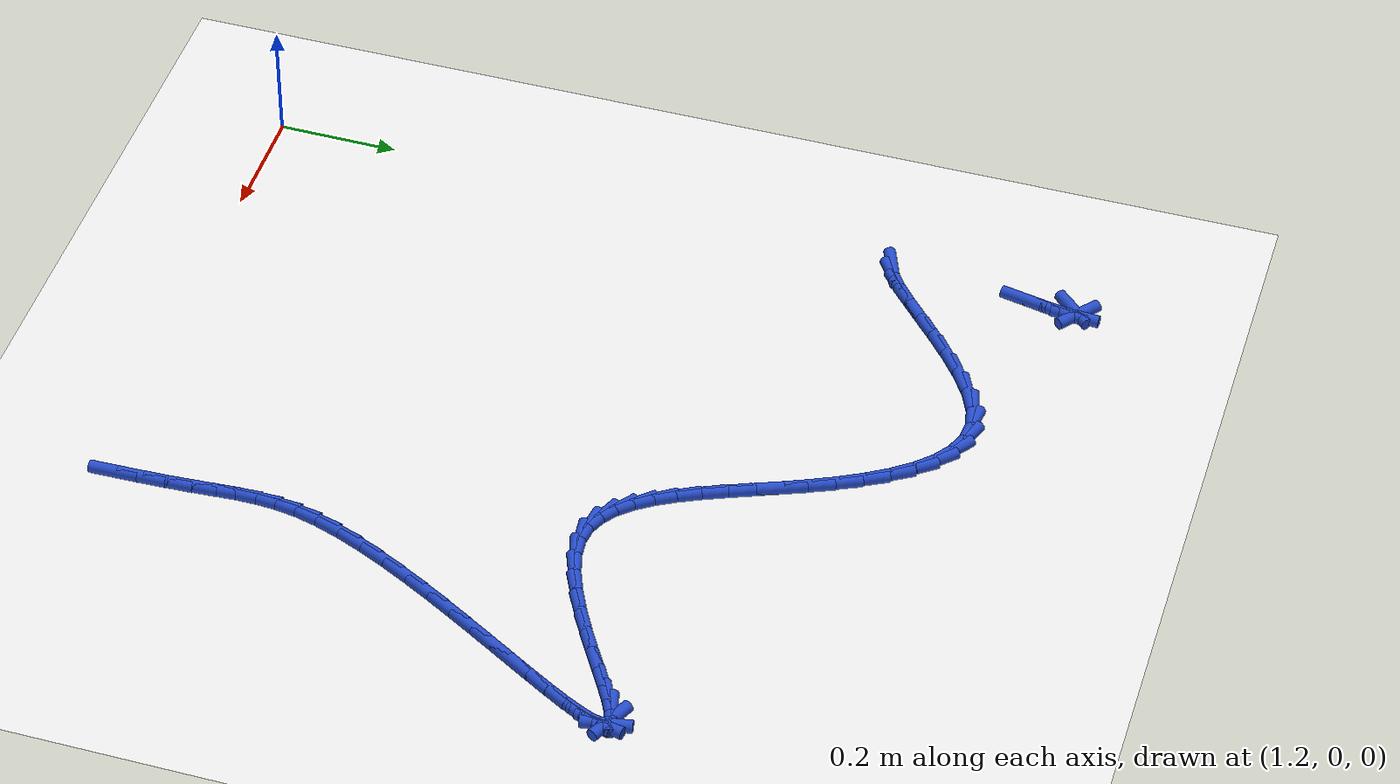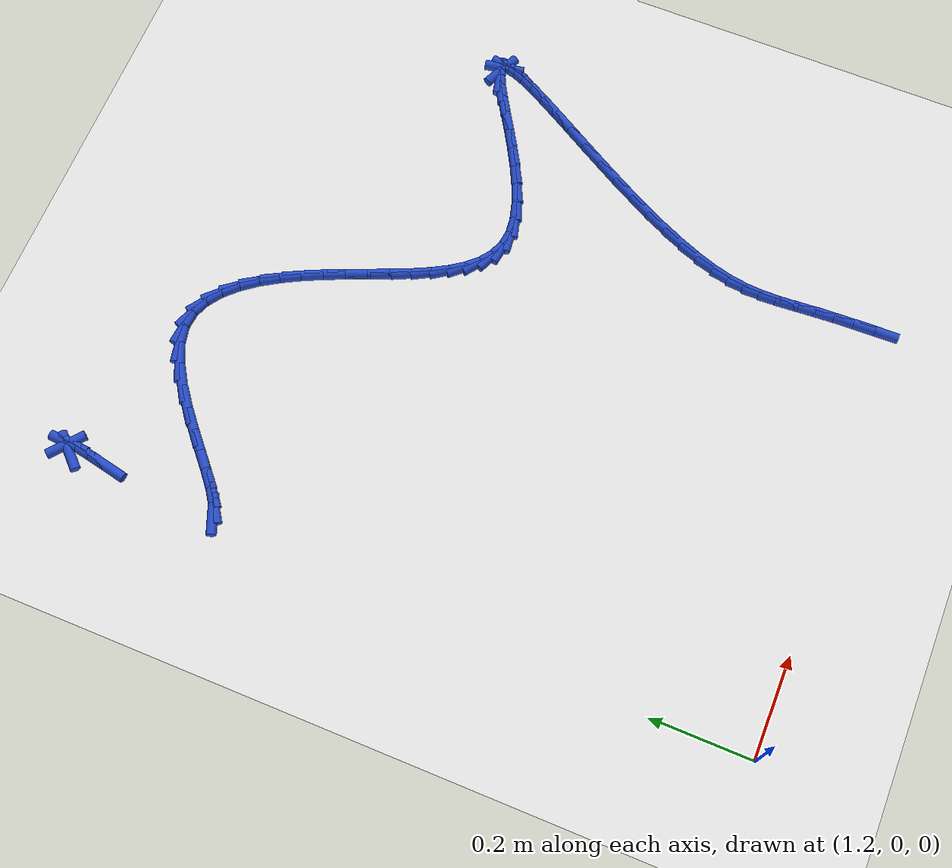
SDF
<sdf version="1.6">
 <world name="default">
  <model name="ground_plane">
   <static>1</static>
   <link name="link">
    <collision name="collision">
     <geometry><plane><normal>0 0 1</normal><size>100 100</size></plane></geometry>
     <surface><friction><ode><mu>100</mu><mu2>50</mu2></ode></friction></surface>
    </collision>
    <visual name="visual">
     <cast_shadows>0</cast_shadows>
     <geometry><plane><normal>0 0 1</normal><size>100 100</size></plane></geometry>
     <material>
      <script><uri>file://media/materials/scripts/gazebo.material</uri><name>Gazebo/WhiteGlow</name></script>
     </material>
    </visual>
   </link>
  </model>
  <model name="line">
   <link name="link_68">
    <pose>1.256264112272041 1.3805755294032667 0.01 0 1.57 0.7977311711641077</pose>
    <collision name="collision">
     <geometry><cylinder><radius>0.01</radius><length>0.08</length></cylinder></geometry>
    </collision>
    <visual name="visual">
     <material>
      <script><name>Gazebo/Blue</name><uri>file://media/materials/scripts/gazebo.material</uri></script>
     </material>
     <geometry><cylinder><radius>0.01</radius><length>0.08</length></cylinder></geometry>
    </visual>
   </link>
   <link name="link_69">
    <pose>1.2657052646737854 1.3902524774414222 0.01 0 1.57 -0.6985106043687016</pose>
    <collision name="collision">
     <geometry><cylinder><radius>0.01</radius><length>0.08</length></cylinder></geometry>
    </collision>
    <visual name="visual">
     <material>
      <script><name>Gazebo/Blue</name><uri>file://media/materials/scripts/gazebo.material</uri></script>
     </material>
     <geometry><cylinder><radius>0.01</radius><length>0.08</length></cylinder></geometry>
    </visual>
   </link>
   <link name="link_70">
    <pose>1.2698895539854897 1.38673873923058 0.01 0 1.57 1.5092083684171693</pose>
    <collision name="collision">
     <geometry><cylinder><radius>0.01</radius><length>0.08</length></cylinder></geometry>
    </collision>
    <visual name="visual">
     <material>
      <script><name>Gazebo/Blue</name><uri>file://media/materials/scripts/gazebo.material</uri></script>
     </material>
     <geometry><cylinder><radius>0.01</radius><length>0.08</length></cylinder></geometry>
    </visual>
   </link>
   <link name="link_71">
    <pose>1.2687721077704281 1.368617778022861 0.01 0 1.57 1.398758770093922</pose>
    <collision name="collision">
     <geometry><cylinder><radius>0.01</radius><length>0.08</length></cylinder></geometry>
    </collision>
    <visual name="visual">
     <material>
      <script><name>Gazebo/Blue</name><uri>file://media/materials/scripts/gazebo.material</uri></script>
     </material>
     <geometry><cylinder><radius>0.01</radius><length>0.08</length></cylinder></geometry>
    </visual>
   </link>
   <link name="link_72">
    <pose>1.263530957244736 1.3384537777559522 0.01 0 1.57 1.3693697978223787</pose>
    <collision name="collision">
     <geometry><cylinder><radius>0.01</radius><length>0.08</length></cylinder></geometry>
    </collision>
    <visual name="visual">
     <material>
      <script><name>Gazebo/Blue</name><uri>file://media/materials/scripts/gazebo.material</uri></script>
     </material>
     <geometry><cylinder><radius>0.01</radius><length>0.08</length></cylinder></geometry>
    </visual>
   </link>
   <link name="link_73">
    <pose>1.2556182831749525 1.2997033171066312 0.01 0 1.57 1.3656132691662246</pose>
    <collision name="collision">
     <geometry><cylinder><radius>0.01</radius><length>0.08</length></cylinder></geometry>
    </collision>
    <visual name="visual">
     <material>
      <script><name>Gazebo/Blue</name><uri>file://media/materials/scripts/gazebo.material</uri></script>
     </material>
     <geometry><cylinder><radius>0.01</radius><length>0.08</length></cylinder></geometry>
    </visual>
   </link>
   <link name="link_80">
    <pose>1.246573677518374 1.0762804029459523 0.01 0 1.57 0.36931523468999916</pose>
    <collision name="collision">
     <geometry><cylinder><radius>0.01</radius><length>0.08</length></cylinder></geometry>
    </collision>
    <visual name="visual">
     <material>
      <script><name>Gazebo/Blue</name><uri>file://media/materials/scripts/gazebo.material</uri></script>
     </material>
     <geometry><cylinder><radius>0.01</radius><length>0.08</length></cylinder></geometry>
    </visual>
   </link>
   <link name="link_81">
    <pose>1.2657587817118034 1.0837064884859733 0.01 0 1.57 0.6015300312243337</pose>
    <collision name="collision">
     <geometry><cylinder><radius>0.01</radius><length>0.08</length></cylinder></geometry>
    </collision>
    <visual name="visual">
     <material>
      <script><name>Gazebo/Blue</name><uri>file://media/materials/scripts/gazebo.material</uri></script>
     </material>
     <geometry><cylinder><radius>0.01</radius><length>0.08</length></cylinder></geometry>
    </visual>
   </link>
   <link name="link_82">
    <pose>1.2900609147155186 1.1003871157178564 0.01 0 1.57 0.6907101843505407</pose>
    <collision name="collision">
     <geometry><cylinder><radius>0.01</radius><length>0.08</length></cylinder></geometry>
    </collision>
    <visual name="visual">
     <material>
      <script><name>Gazebo/Blue</name><uri>file://media/materials/scripts/gazebo.material</uri></script>
     </material>
     <geometry><cylinder><radius>0.01</radius><length>0.08</length></cylinder></geometry>
    </visual>
   </link>
   <link name="link_83">
    <pose>1.3186333728317066 1.1240031310455665 0.01 0 1.57 0.7229866450906738</pose>
    <collision name="collision">
     <geometry><cylinder><radius>0.01</radius><length>0.08</length></cylinder></geometry>
    </collision>
    <visual name="visual">
     <material>
      <script><name>Gazebo/Blue</name><uri>file://media/materials/scripts/gazebo.material</uri></script>
     </material>
     <geometry><cylinder><radius>0.01</radius><length>0.08</length></cylinder></geometry>
    </visual>
   </link>
   <link name="link_84">
    <pose>1.3506294523625566 1.1522353808730694 0.01 0 1.57 0.723365382916249</pose>
    <collision name="collision">
     <geometry><cylinder><radius>0.01</radius><length>0.08</length></cylinder></geometry>
    </collision>
    <visual name="visual">
     <material>
      <script><name>Gazebo/Blue</name><uri>file://media/materials/scripts/gazebo.material</uri></script>
     </material>
     <geometry><cylinder><radius>0.01</radius><length>0.08</length></cylinder></geometry>
    </visual>
   </link>
   <link name="link_85">
    <pose>1.3852024496102557 1.18276471160433 0.01 0 1.57 0.6988626458921552</pose>
    <collision name="collision">
     <geometry><cylinder><radius>0.01</radius><length>0.08</length></cylinder></geometry>
    </collision>
    <visual name="visual">
     <material>
      <script><name>Gazebo/Blue</name><uri>file://media/materials/scripts/gazebo.material</uri></script>
     </material>
     <geometry><cylinder><radius>0.01</radius><length>0.08</length></cylinder></geometry>
    </visual>
   </link>
   <link name="link_86">
    <pose>1.4215056608769936 1.2132719696433147 0.01 0 1.57 0.6482341323624207</pose>
    <collision name="collision">
     <geometry><cylinder><radius>0.01</radius><length>0.08</length></cylinder></geometry>
    </collision>
    <visual name="visual">
     <material>
      <script><name>Gazebo/Blue</name><uri>file://media/materials/scripts/gazebo.material</uri></script>
     </material>
     <geometry><cylinder><radius>0.01</radius><length>0.08</length></cylinder></geometry>
    </visual>
   </link>
   <link name="link_87">
    <pose>1.4586923824649578 1.241438001393988 0.01 0 1.57 0.5632404988815849</pose>
    <collision name="collision">
     <geometry><cylinder><radius>0.01</radius><length>0.08</length></cylinder></geometry>
    </collision>
    <visual name="visual">
     <material>
      <script><name>Gazebo/Blue</name><uri>file://media/materials/scripts/gazebo.material</uri></script>
     </material>
     <geometry><cylinder><radius>0.01</radius><length>0.08</length></cylinder></geometry>
    </visual>
   </link>
   <link name="link_88">
    <pose>1.4959159106763367 1.2649436532603164 0.01 0 1.57 0.4260462333537006</pose>
    <collision name="collision">
     <geometry><cylinder><radius>0.01</radius><length>0.08</length></cylinder></geometry>
    </collision>
    <visual name="visual">
     <material>
      <script><name>Gazebo/Blue</name><uri>file://media/materials/scripts/gazebo.material</uri></script>
     </material>
     <geometry><cylinder><radius>0.01</radius><length>0.08</length></cylinder></geometry>
    </visual>
   </link>
   <link name="link_89">
    <pose>1.5323295418133176 1.2814697716462642 0.01 0 1.57 0.20534554346475045</pose>
    <collision name="collision">
     <geometry><cylinder><radius>0.01</radius><length>0.08</length></cylinder></geometry>
    </collision>
    <visual name="visual">
     <material>
      <script><name>Gazebo/Blue</name><uri>file://media/materials/scripts/gazebo.material</uri></script>
     </material>
     <geometry><cylinder><radius>0.01</radius><length>0.08</length></cylinder></geometry>
    </visual>
   </link>
   <link name="link_90">
    <pose>1.567089635826595 1.288709650074235 0.01 0 1.57 -0.09607439442499995</pose>
    <collision name="collision">
     <geometry><cylinder><radius>0.01</radius><length>0.08</length></cylinder></geometry>
    </collision>
    <visual name="visual">
     <material>
      <script><name>Gazebo/Blue</name><uri>file://media/materials/scripts/gazebo.material</uri></script>
     </material>
     <geometry><cylinder><radius>0.01</radius><length>0.08</length></cylinder></geometry>
    </visual>
   </link>
   <link name="link_91">
    <pose>1.5996516130219725 1.28557161690283 0.01 0 1.57 -0.3874172694732243</pose>
    <collision name="collision">
     <geometry><cylinder><radius>0.01</radius><length>0.08</length></cylinder></geometry>
    </collision>
    <visual name="visual">
     <material>
      <script><name>Gazebo/Blue</name><uri>file://media/materials/scripts/gazebo.material</uri></script>
     </material>
     <geometry><cylinder><radius>0.01</radius><length>0.08</length></cylinder></geometry>
    </visual>
   </link>
   <link name="link_92">
    <pose>1.630016689404305 1.273181481933656 0.01 0 1.57 -0.6230113221757752</pose>
    <collision name="collision">
     <geometry><cylinder><radius>0.01</radius><length>0.08</length></cylinder></geometry>
    </collision>
    <visual name="visual">
     <material>
      <script><name>Gazebo/Blue</name><uri>file://media/materials/scripts/gazebo.material</uri></script>
     </material>
     <geometry><cylinder><radius>0.01</radius><length>0.08</length></cylinder></geometry>
    </visual>
   </link>
   <link name="link_93">
    <pose>1.6582441629500086 1.2529010328155763 0.01 0 1.57 -0.7978565454737813</pose>
    <collision name="collision">
     <geometry><cylinder><radius>0.01</radius><length>0.08</length></cylinder></geometry>
    </collision>
    <visual name="visual">
     <material>
      <script><name>Gazebo/Blue</name><uri>file://media/materials/scripts/gazebo.material</uri></script>
     </material>
     <geometry><cylinder><radius>0.01</radius><length>0.08</length></cylinder></geometry>
    </visual>
   </link>
   <link name="link_94">
    <pose>1.6843933316354958 1.2260920571974543 0.01 0 1.57 -0.9243320538142196</pose>
    <collision name="collision">
     <geometry><cylinder><radius>0.01</radius><length>0.08</length></cylinder></geometry>
    </collision>
    <visual name="visual">
     <material>
      <script><name>Gazebo/Blue</name><uri>file://media/materials/scripts/gazebo.material</uri></script>
     </material>
     <geometry><cylinder><radius>0.01</radius><length>0.08</length></cylinder></geometry>
    </visual>
   </link>
   <link name="link_95">
    <pose>1.708523493437182 1.1941163427281538 0.01 0 1.57 -1.0160743895242792</pose>
    <collision name="collision">
     <geometry><cylinder><radius>0.01</radius><length>0.08</length></cylinder></geometry>
    </collision>
    <visual name="visual">
     <material>
      <script><name>Gazebo/Blue</name><uri>file://media/materials/scripts/gazebo.material</uri></script>
     </material>
     <geometry><cylinder><radius>0.01</radius><length>0.08</length></cylinder></geometry>
    </visual>
   </link>
   <link name="link_96">
    <pose>1.7306939463314799 1.1583356770565378 0.01 0 1.57 -1.0831982492757537</pose>
    <collision name="collision">
     <geometry><cylinder><radius>0.01</radius><length>0.08</length></cylinder></geometry>
    </collision>
    <visual name="visual">
     <material>
      <script><name>Gazebo/Blue</name><uri>file://media/materials/scripts/gazebo.material</uri></script>
     </material>
     <geometry><cylinder><radius>0.01</radius><length>0.08</length></cylinder></geometry>
    </visual>
   </link>
   <link name="link_97">
    <pose>1.7509659513090186 1.120108740271139 0.01 0 1.57 -1.1315955366389887</pose>
    <collision name="collision">
     <geometry><cylinder><radius>0.01</radius><length>0.08</length></cylinder></geometry>
    </collision>
    <visual name="visual">
     <material>
      <script><name>Gazebo/Blue</name><uri>file://media/materials/scripts/gazebo.material</uri></script>
     </material>
     <geometry><cylinder><radius>0.01</radius><length>0.08</length></cylinder></geometry>
    </visual>
   </link>
   <link name="link_98">
    <pose>1.7695386146684435 1.0805759956955598 0.01 0 1.57 -1.1631310975254268</pose>
    <collision name="collision">
     <geometry><cylinder><radius>0.01</radius><length>0.08</length></cylinder></geometry>
    </collision>
    <visual name="visual">
     <material>
      <script><name>Gazebo/Blue</name><uri>file://media/materials/scripts/gazebo.material</uri></script>
     </material>
     <geometry><cylinder><radius>0.01</radius><length>0.08</length></cylinder></geometry>
    </visual>
   </link>
   <link name="link_99">
    <pose>1.7868371159117076 1.0405200202387666 0.01 0 1.57 -1.1786880895584793</pose>
    <collision name="collision">
     <geometry><cylinder><radius>0.01</radius><length>0.08</length></cylinder></geometry>
    </collision>
    <visual name="visual">
     <material>
      <script><name>Gazebo/Blue</name><uri>file://media/materials/scripts/gazebo.material</uri></script>
     </material>
     <geometry><cylinder><radius>0.01</radius><length>0.08</length></cylinder></geometry>
    </visual>
   </link>
   <link name="link_100">
    <pose>1.8033076085232442 1.0006901878326295 0.01 0 1.57 -1.178214712655763</pose>
    <collision name="collision">
     <geometry><cylinder><radius>0.01</radius><length>0.08</length></cylinder></geometry>
    </collision>
    <visual name="visual">
     <material>
      <script><name>Gazebo/Blue</name><uri>file://media/materials/scripts/gazebo.material</uri></script>
     </material>
     <geometry><cylinder><radius>0.01</radius><length>0.08</length></cylinder></geometry>
    </visual>
   </link>
   <link name="link_101">
    <pose>1.8193962459874853 0.9618358724090186 0.01 0 1.57 -1.1604491172332083</pose>
    <collision name="collision">
     <geometry><cylinder><radius>0.01</radius><length>0.08</length></cylinder></geometry>
    </collision>
    <visual name="visual">
     <material>
      <script><name>Gazebo/Blue</name><uri>file://media/materials/scripts/gazebo.material</uri></script>
     </material>
     <geometry><cylinder><radius>0.01</radius><length>0.08</length></cylinder></geometry>
    </visual>
   </link>
   <link name="link_102">
    <pose>1.8355491817888654 0.9247064478998029 0.01 0 1.57 -1.122598542730923</pose>
    <collision name="collision">
     <geometry><cylinder><radius>0.01</radius><length>0.08</length></cylinder></geometry>
    </collision>
    <visual name="visual">
     <material>
      <script><name>Gazebo/Blue</name><uri>file://media/materials/scripts/gazebo.material</uri></script>
     </material>
     <geometry><cylinder><radius>0.01</radius><length>0.08</length></cylinder></geometry>
    </visual>
   </link>
   <link name="link_103">
    <pose>1.8522125694118179 0.8900512882368539 0.01 0 1.57 -1.0598638934474927</pose>
    <collision name="collision">
     <geometry><cylinder><radius>0.01</radius><length>0.08</length></cylinder></geometry>
    </collision>
    <visual name="visual">
     <material>
      <script><name>Gazebo/Blue</name><uri>file://media/materials/scripts/gazebo.material</uri></script>
     </material>
     <geometry><cylinder><radius>0.01</radius><length>0.08</length></cylinder></geometry>
    </visual>
   </link>
   <link name="link_104">
    <pose>1.8698325623407757 0.8586197673520409 0.01 0 1.57 -0.9649313113036356</pose>
    <collision name="collision">
     <geometry><cylinder><radius>0.01</radius><length>0.08</length></cylinder></geometry>
    </collision>
    <visual name="visual">
     <material>
      <script><name>Gazebo/Blue</name><uri>file://media/materials/scripts/gazebo.material</uri></script>
     </material>
     <geometry><cylinder><radius>0.01</radius><length>0.08</length></cylinder></geometry>
    </visual>
   </link>
   <link name="link_105">
    <pose>1.8888553140601725 0.8311612591772345 0.01 0 1.57 -0.8281272926689245</pose>
    <collision name="collision">
     <geometry><cylinder><radius>0.01</radius><length>0.08</length></cylinder></geometry>
    </collision>
    <visual name="visual">
     <material>
      <script><name>Gazebo/Blue</name><uri>file://media/materials/scripts/gazebo.material</uri></script>
     </material>
     <geometry><cylinder><radius>0.01</radius><length>0.08</length></cylinder></geometry>
    </visual>
   </link>
   <link name="link_106">
    <pose>1.9097269780544415 0.8084251376443047 0.01 0 1.57 -0.6404362878605853</pose>
    <collision name="collision">
     <geometry><cylinder><radius>0.01</radius><length>0.08</length></cylinder></geometry>
    </collision>
    <visual name="visual">
     <material>
      <script><name>Gazebo/Blue</name><uri>file://media/materials/scripts/gazebo.material</uri></script>
     </material>
     <geometry><cylinder><radius>0.01</radius><length>0.08</length></cylinder></geometry>
    </visual>
   </link>
   <link name="link_107">
    <pose>1.9328937078080162 0.7911607766851215 0.01 0 1.57 -0.40292772986061187</pose>
    <collision name="collision">
     <geometry><cylinder><radius>0.01</radius><length>0.08</length></cylinder></geometry>
    </collision>
    <visual name="visual">
     <material>
      <script><name>Gazebo/Blue</name><uri>file://media/materials/scripts/gazebo.material</uri></script>
     </material>
     <geometry><cylinder><radius>0.01</radius><length>0.08</length></cylinder></geometry>
    </visual>
   </link>
   <link name="link_108">
    <pose>1.958801656805329 0.7801175502315554 0.01 0 1.57 -0.13907480496183336</pose>
    <collision name="collision">
     <geometry><cylinder><radius>0.01</radius><length>0.08</length></cylinder></geometry>
    </collision>
    <visual name="visual">
     <material>
      <script><name>Gazebo/Blue</name><uri>file://media/materials/scripts/gazebo.material</uri></script>
     </material>
     <geometry><cylinder><radius>0.01</radius><length>0.08</length></cylinder></geometry>
    </visual>
   </link>
   <link name="link_109">
    <pose>1.9878969785308152 0.776044832215476 0.01 0 1.57 0.1023306690665531</pose>
    <collision name="collision">
     <geometry><cylinder><radius>0.01</radius><length>0.08</length></cylinder></geometry>
    </collision>
    <visual name="visual">
     <material>
      <script><name>Gazebo/Blue</name><uri>file://media/materials/scripts/gazebo.material</uri></script>
     </material>
     <geometry><cylinder><radius>0.01</radius><length>0.08</length></cylinder></geometry>
    </visual>
   </link>
   <link name="link_110">
    <pose>2.0204201757538427 0.7793846184911194 0.01 0 1.57 0.2700291150694442</pose>
    <collision name="collision">
     <geometry><cylinder><radius>0.01</radius><length>0.08</length></cylinder></geometry>
    </collision>
    <visual name="visual">
     <material>
      <script><name>Gazebo/Blue</name><uri>file://media/materials/scripts/gazebo.material</uri></script>
     </material>
     <geometry><cylinder><radius>0.01</radius><length>0.08</length></cylinder></geometry>
    </visual>
   </link>
   <link name="link_111">
    <pose>2.055645443124595 0.7891346019741866 0.01 0 1.57 0.37973209714804096</pose>
    <collision name="collision">
     <geometry><cylinder><radius>0.01</radius><length>0.08</length></cylinder></geometry>
    </collision>
    <visual name="visual">
     <material>
      <script><name>Gazebo/Blue</name><uri>file://media/materials/scripts/gazebo.material</uri></script>
     </material>
     <geometry><cylinder><radius>0.01</radius><length>0.08</length></cylinder></geometry>
    </visual>
   </link>
   <link name="link_112">
    <pose>2.092563409028925 0.8038686401797407 0.01 0 1.57 0.45276539629791684</pose>
    <collision name="collision">
     <geometry><cylinder><radius>0.01</radius><length>0.08</length></cylinder></geometry>
    </collision>
    <visual name="visual">
     <material>
      <script><name>Gazebo/Blue</name><uri>file://media/materials/scripts/gazebo.material</uri></script>
     </material>
     <geometry><cylinder><radius>0.01</radius><length>0.08</length></cylinder></geometry>
    </visual>
   </link>
   <link name="link_113">
    <pose>2.130164664535675 0.8221605348465617 0.01 0 1.57 0.5012399327119883</pose>
    <collision name="collision">
     <geometry><cylinder><radius>0.01</radius><length>0.08</length></cylinder></geometry>
    </collision>
    <visual name="visual">
     <material>
      <script><name>Gazebo/Blue</name><uri>file://media/materials/scripts/gazebo.material</uri></script>
     </material>
     <geometry><cylinder><radius>0.01</radius><length>0.08</length></cylinder></geometry>
    </visual>
   </link>
   <link name="link_114">
    <pose>2.1674398007136833 0.8425840877134294 0.01 0 1.57 0.5314773562113534</pose>
    <collision name="collision">
     <geometry><cylinder><radius>0.01</radius><length>0.08</length></cylinder></geometry>
    </collision>
    <visual name="visual">
     <material>
      <script><name>Gazebo/Blue</name><uri>file://media/materials/scripts/gazebo.material</uri></script>
     </material>
     <geometry><cylinder><radius>0.01</radius><length>0.08</length></cylinder></geometry>
    </visual>
   </link>
   <link name="link_115">
    <pose>2.2033794086317906 0.8637131005191236 0.01 0 1.57 0.545905353771191</pose>
    <collision name="collision">
     <geometry><cylinder><radius>0.01</radius><length>0.08</length></cylinder></geometry>
    </collision>
    <visual name="visual">
     <material>
      <script><name>Gazebo/Blue</name><uri>file://media/materials/scripts/gazebo.material</uri></script>
     </material>
     <geometry><cylinder><radius>0.01</radius><length>0.08</length></cylinder></geometry>
    </visual>
   </link>
   <link name="link_116">
    <pose>2.2369740793588364 0.8841213750024245 0.01 0 1.57 0.5432629708868549</pose>
    <collision name="collision">
     <geometry><cylinder><radius>0.01</radius><length>0.08</length></cylinder></geometry>
    </collision>
    <visual name="visual">
     <material>
      <script><name>Gazebo/Blue</name><uri>file://media/materials/scripts/gazebo.material</uri></script>
     </material>
     <geometry><cylinder><radius>0.01</radius><length>0.08</length></cylinder></geometry>
    </visual>
   </link>
   <link name="link_117">
    <pose>2.267214403963659 0.9023827129021109 0.01 0 1.57 0.5162745548780341</pose>
    <collision name="collision">
     <geometry><cylinder><radius>0.01</radius><length>0.08</length></cylinder></geometry>
    </collision>
    <visual name="visual">
     <material>
      <script><name>Gazebo/Blue</name><uri>file://media/materials/scripts/gazebo.material</uri></script>
     </material>
     <geometry><cylinder><radius>0.01</radius><length>0.08</length></cylinder></geometry>
    </visual>
   </link>
   <link name="link_118">
    <pose>2.2930909735151013 0.917070915956964 0.01 0 1.57 0.44144688691156836</pose>
    <collision name="collision">
     <geometry><cylinder><radius>0.01</radius><length>0.08</length></cylinder></geometry>
    </collision>
    <visual name="visual">
     <material>
      <script><name>Gazebo/Blue</name><uri>file://media/materials/scripts/gazebo.material</uri></script>
     </material>
     <geometry><cylinder><radius>0.01</radius><length>0.08</length></cylinder></geometry>
    </visual>
   </link>
   <link name="link_119">
    <pose>2.3135943790820015 0.9267597859057628 0.01 0 1.57 0.22901147624016793</pose>
    <collision name="collision">
     <geometry><cylinder><radius>0.01</radius><length>0.08</length></cylinder></geometry>
    </collision>
    <visual name="visual">
     <material>
      <script><name>Gazebo/Blue</name><uri>file://media/materials/scripts/gazebo.material</uri></script>
     </material>
     <geometry><cylinder><radius>0.01</radius><length>0.08</length></cylinder></geometry>
    </visual>
   </link>
   <link name="link_120">
    <pose>2.3277441455554984 0.9300581090016118 0.01 0 1.57 -0.44055031408509276</pose>
    <collision name="collision">
     <geometry><cylinder><radius>0.01</radius><length>0.08</length></cylinder></geometry>
    </collision>
    <visual name="visual">
     <material>
      <script><name>Gazebo/Blue</name><uri>file://media/materials/scripts/gazebo.material</uri></script>
     </material>
     <geometry><cylinder><radius>0.01</radius><length>0.08</length></cylinder></geometry>
    </visual>
   </link>
   <link name="link_121">
    <pose>2.335315597532526 0.9264885253728563 0.01 0 1.57 -1.413280313240942</pose>
    <collision name="collision">
     <geometry><cylinder><radius>0.01</radius><length>0.08</length></cylinder></geometry>
    </collision>
    <visual name="visual">
     <material>
      <script><name>Gazebo/Blue</name><uri>file://media/materials/scripts/gazebo.material</uri></script>
     </material>
     <geometry><cylinder><radius>0.01</radius><length>0.08</length></cylinder></geometry>
    </visual>
   </link>
   <link name="link_122">
    <pose>2.3368937283829663 0.916552663284707 0.01 0 1.57 1.3346585259720734</pose>
    <collision name="collision">
     <geometry><cylinder><radius>0.01</radius><length>0.08</length></cylinder></geometry>
    </collision>
    <visual name="visual">
     <material>
      <script><name>Gazebo/Blue</name><uri>file://media/materials/scripts/gazebo.material</uri></script>
     </material>
     <geometry><cylinder><radius>0.01</radius><length>0.08</length></cylinder></geometry>
    </visual>
   </link>
   <link name="link_123">
    <pose>2.333103255124296 0.9008001817293193 0.01 0 1.57 1.1851091924648935</pose>
    <collision name="collision">
     <geometry><cylinder><radius>0.01</radius><length>0.08</length></cylinder></geometry>
    </collision>
    <visual name="visual">
     <material>
      <script><name>Gazebo/Blue</name><uri>file://media/materials/scripts/gazebo.material</uri></script>
     </material>
     <geometry><cylinder><radius>0.01</radius><length>0.08</length></cylinder></geometry>
    </visual>
   </link>
   <link name="link_124">
    <pose>2.324568894773991 0.8797807396988482 0.01 0 1.57 1.113849111033822</pose>
    <collision name="collision">
     <geometry><cylinder><radius>0.01</radius><length>0.08</length></cylinder></geometry>
    </collision>
    <visual name="visual">
     <material>
      <script><name>Gazebo/Blue</name><uri>file://media/materials/scripts/gazebo.material</uri></script>
     </material>
     <geometry><cylinder><radius>0.01</radius><length>0.08</length></cylinder></geometry>
    </visual>
   </link>
   <link name="link_125">
    <pose>2.311915364349528 0.8540439961854481 0.01 0 1.57 1.0756730301385398</pose>
    <collision name="collision">
     <geometry><cylinder><radius>0.01</radius><length>0.08</length></cylinder></geometry>
    </collision>
    <visual name="visual">
     <material>
      <script><name>Gazebo/Blue</name><uri>file://media/materials/scripts/gazebo.material</uri></script>
     </material>
     <geometry><cylinder><radius>0.01</radius><length>0.08</length></cylinder></geometry>
    </visual>
   </link>
   <link name="link_126">
    <pose>2.2957673808683836 0.8241396101812746 0.01 0 1.57 1.0547572383894899</pose>
    <collision name="collision">
     <geometry><cylinder><radius>0.01</radius><length>0.08</length></cylinder></geometry>
    </collision>
    <visual name="visual">
     <material>
      <script><name>Gazebo/Blue</name><uri>file://media/materials/scripts/gazebo.material</uri></script>
     </material>
     <geometry><cylinder><radius>0.01</radius><length>0.08</length></cylinder></geometry>
    </visual>
   </link>
   <link name="link_127">
    <pose>2.2767496613480347 0.7906172406784824 0.01 0 1.57 1.0443921432399323</pose>
    <collision name="collision">
     <geometry><cylinder><radius>0.01</radius><length>0.08</length></cylinder></geometry>
    </collision>
    <visual name="visual">
     <material>
      <script><name>Gazebo/Blue</name><uri>file://media/materials/scripts/gazebo.material</uri></script>
     </material>
     <geometry><cylinder><radius>0.01</radius><length>0.08</length></cylinder></geometry>
    </visual>
   </link>
   <link name="link_128">
    <pose>2.2554869228059573 0.7540265466692262 0.01 0 1.57 1.0414018182268108</pose>
    <collision name="collision">
     <geometry><cylinder><radius>0.01</radius><length>0.08</length></cylinder></geometry>
    </collision>
    <visual name="visual">
     <material>
      <script><name>Gazebo/Blue</name><uri>file://media/materials/scripts/gazebo.material</uri></script>
     </material>
     <geometry><cylinder><radius>0.01</radius><length>0.08</length></cylinder></geometry>
    </visual>
   </link>
   <link name="link_129">
    <pose>2.2326038822596272 0.714917187145661 0.01 0 1.57 1.044244479789153</pose>
    <collision name="collision">
     <geometry><cylinder><radius>0.01</radius><length>0.08</length></cylinder></geometry>
    </collision>
    <visual name="visual">
     <material>
      <script><name>Gazebo/Blue</name><uri>file://media/materials/scripts/gazebo.material</uri></script>
     </material>
     <geometry><cylinder><radius>0.01</radius><length>0.08</length></cylinder></geometry>
    </visual>
   </link>
   <link name="link_130">
    <pose>2.2087252567265216 0.673838821099942 0.01 0 1.57 1.0522697586213303</pose>
    <collision name="collision">
     <geometry><cylinder><radius>0.01</radius><length>0.08</length></cylinder></geometry>
    </collision>
    <visual name="visual">
     <material>
      <script><name>Gazebo/Blue</name><uri>file://media/materials/scripts/gazebo.material</uri></script>
     </material>
     <geometry><cylinder><radius>0.01</radius><length>0.08</length></cylinder></geometry>
    </visual>
   </link>
   <link name="link_131">
    <pose>2.184475763224117 0.631341107524224 0.01 0 1.57 1.0654149214572544</pose>
    <collision name="collision">
     <geometry><cylinder><radius>0.01</radius><length>0.08</length></cylinder></geometry>
    </collision>
    <visual name="visual">
     <material>
      <script><name>Gazebo/Blue</name><uri>file://media/materials/scripts/gazebo.material</uri></script>
     </material>
     <geometry><cylinder><radius>0.01</radius><length>0.08</length></cylinder></geometry>
    </visual>
   </link>
   <link name="link_132">
    <pose>2.160480118769889 0.5879737054106621 0.01 0 1.57 1.0841038311214604</pose>
    <collision name="collision">
     <geometry><cylinder><radius>0.01</radius><length>0.08</length></cylinder></geometry>
    </collision>
    <visual name="visual">
     <material>
      <script><name>Gazebo/Blue</name><uri>file://media/materials/scripts/gazebo.material</uri></script>
     </material>
     <geometry><cylinder><radius>0.01</radius><length>0.08</length></cylinder></geometry>
    </visual>
   </link>
   <link name="link_133">
    <pose>2.1373630403813166 0.5442862737514118 0.01 0 1.57 1.1092699057597017</pose>
    <collision name="collision">
     <geometry><cylinder><radius>0.01</radius><length>0.08</length></cylinder></geometry>
    </collision>
    <visual name="visual">
     <material>
      <script><name>Gazebo/Blue</name><uri>file://media/materials/scripts/gazebo.material</uri></script>
     </material>
     <geometry><cylinder><radius>0.01</radius><length>0.08</length></cylinder></geometry>
    </visual>
   </link>
   <link name="link_134">
    <pose>2.1157492450758735 0.5008284715386266 0.01 0 1.57 1.1424909542186195</pose>
    <collision name="collision">
     <geometry><cylinder><radius>0.01</radius><length>0.08</length></cylinder></geometry>
    </collision>
    <visual name="visual">
     <material>
      <script><name>Gazebo/Blue</name><uri>file://media/materials/scripts/gazebo.material</uri></script>
     </material>
     <geometry><cylinder><radius>0.01</radius><length>0.08</length></cylinder></geometry>
    </visual>
   </link>
   <link name="link_135">
    <pose>2.0962634498710373 0.45814995776446255 0.01 0 1.57 1.1862674839466947</pose>
    <collision name="collision">
     <geometry><cylinder><radius>0.01</radius><length>0.08</length></cylinder></geometry>
    </collision>
    <visual name="visual">
     <material>
      <script><name>Gazebo/Blue</name><uri>file://media/materials/scripts/gazebo.material</uri></script>
     </material>
     <geometry><cylinder><radius>0.01</radius><length>0.08</length></cylinder></geometry>
    </visual>
   </link>
   <link name="link_136">
    <pose>2.0795303717842843 0.4168003914210742 0.01 0 1.57 1.2445229330085859</pose>
    <collision name="collision">
     <geometry><cylinder><radius>0.01</radius><length>0.08</length></cylinder></geometry>
    </collision>
    <visual name="visual">
     <material>
      <script><name>Gazebo/Blue</name><uri>file://media/materials/scripts/gazebo.material</uri></script>
     </material>
     <geometry><cylinder><radius>0.01</radius><length>0.08</length></cylinder></geometry>
    </visual>
   </link>
   <link name="link_137">
    <pose>2.0661747278330918 0.3773294315006167 0.01 0 1.57 1.3233279037830967</pose>
    <collision name="collision">
     <geometry><cylinder><radius>0.01</radius><length>0.08</length></cylinder></geometry>
    </collision>
    <visual name="visual">
     <material>
      <script><name>Gazebo/Blue</name><uri>file://media/materials/scripts/gazebo.material</uri></script>
     </material>
     <geometry><cylinder><radius>0.01</radius><length>0.08</length></cylinder></geometry>
    </visual>
   </link>
   <link name="link_138">
    <pose>2.0568138915682397 0.34027838631047763 0.01 0 1.57 1.4197701751175085</pose>
    <collision name="collision">
     <geometry><cylinder><radius>0.01</radius><length>0.08</length></cylinder></geometry>
    </collision>
    <visual name="visual">
     <material>
      <script><name>Gazebo/Blue</name><uri>file://media/materials/scripts/gazebo.material</uri></script>
     </material>
     <geometry><cylinder><radius>0.01</radius><length>0.08</length></cylinder></geometry>
    </visual>
   </link>
   <link name="link_139">
    <pose>2.0515339975564326 0.30558446128995703 0.01 0 1.57 1.5111953575191057</pose>
    <collision name="collision">
     <geometry><cylinder><radius>0.01</radius><length>0.08</length></cylinder></geometry>
    </collision>
    <visual name="visual">
     <material>
      <script><name>Gazebo/Blue</name><uri>file://media/materials/scripts/gazebo.material</uri></script>
     </material>
     <geometry><cylinder><radius>0.01</radius><length>0.08</length></cylinder></geometry>
    </visual>
   </link>
   <link name="link_140">
    <pose>2.0495409298618625 0.2721838776337113 0.01 0 1.57 -1.5582653371318511</pose>
    <collision name="collision">
     <geometry><cylinder><radius>0.01</radius><length>0.08</length></cylinder></geometry>
    </collision>
    <visual name="visual">
     <material>
      <script><name>Gazebo/Blue</name><uri>file://media/materials/scripts/gazebo.material</uri></script>
     </material>
     <geometry><cylinder><radius>0.01</radius><length>0.08</length></cylinder></geometry>
    </visual>
   </link>
   <link name="link_141">
    <pose>2.049957796933531 0.23891872755105767 0.01 0 1.57 -1.513988299903648</pose>
    <collision name="collision">
     <geometry><cylinder><radius>0.01</radius><length>0.08</length></cylinder></geometry>
    </collision>
    <visual name="visual">
     <material>
      <script><name>Gazebo/Blue</name><uri>file://media/materials/scripts/gazebo.material</uri></script>
     </material>
     <geometry><cylinder><radius>0.01</radius><length>0.08</length></cylinder></geometry>
    </visual>
   </link>
   <link name="link_142">
    <pose>2.051907707220443 0.20463110325131473 0.01 0 1.57 -1.4994560046757053</pose>
    <collision name="collision">
     <geometry><cylinder><radius>0.01</radius><length>0.08</length></cylinder></geometry>
    </collision>
    <visual name="visual">
     <material>
      <script><name>Gazebo/Blue</name><uri>file://media/materials/scripts/gazebo.material</uri></script>
     </material>
     <geometry><cylinder><radius>0.01</radius><length>0.08</length></cylinder></geometry>
    </visual>
   </link>
   <link name="link_143">
    <pose>2.0545137691716007 0.1681630969438008 0.01 0 1.57 -1.510528281583354</pose>
    <collision name="collision">
     <geometry><cylinder><radius>0.01</radius><length>0.08</length></cylinder></geometry>
    </collision>
    <visual name="visual">
     <material>
      <script><name>Gazebo/Blue</name><uri>file://media/materials/scripts/gazebo.material</uri></script>
     </material>
     <geometry><cylinder><radius>0.01</radius><length>0.08</length></cylinder></geometry>
    </visual>
   </link>
   <link name="link_144">
    <pose>2.056914180206292 0.12838241325313096 0.01 0 1.57 -1.5293653588928016</pose>
    <collision name="collision">
     <geometry><cylinder><radius>0.01</radius><length>0.08</length></cylinder></geometry>
    </collision>
    <visual name="visual">
     <material>
      <script><name>Gazebo/Blue</name><uri>file://media/materials/scripts/gazebo.material</uri></script>
     </material>
     <geometry><cylinder><radius>0.01</radius><length>0.08</length></cylinder></geometry>
    </visual>
   </link>
   <link name="link_145">
    <pose>2.0587146443788455 0.08495031487085294 0.01 0 1.57 -1.541717051957303</pose>
    <collision name="collision">
     <geometry><cylinder><radius>0.01</radius><length>0.08</length></cylinder></geometry>
    </collision>
    <visual name="visual">
     <material>
      <script><name>Gazebo/Blue</name><uri>file://media/materials/scripts/gazebo.material</uri></script>
     </material>
     <geometry><cylinder><radius>0.01</radius><length>0.08</length></cylinder></geometry>
    </visual>
   </link>
   <link name="link_146">
    <pose>2.0600670696723764 0.038455205413131244 0.01 0 1.57 -1.5485738017879795</pose>
    <collision name="collision">
     <geometry><cylinder><radius>0.01</radius><length>0.08</length></cylinder></geometry>
    </collision>
    <visual name="visual">
     <material>
      <script><name>Gazebo/Blue</name><uri>file://media/materials/scripts/gazebo.material</uri></script>
     </material>
     <geometry><cylinder><radius>0.01</radius><length>0.08</length></cylinder></geometry>
    </visual>
   </link>
  </model>
 </world>
</sdf>
